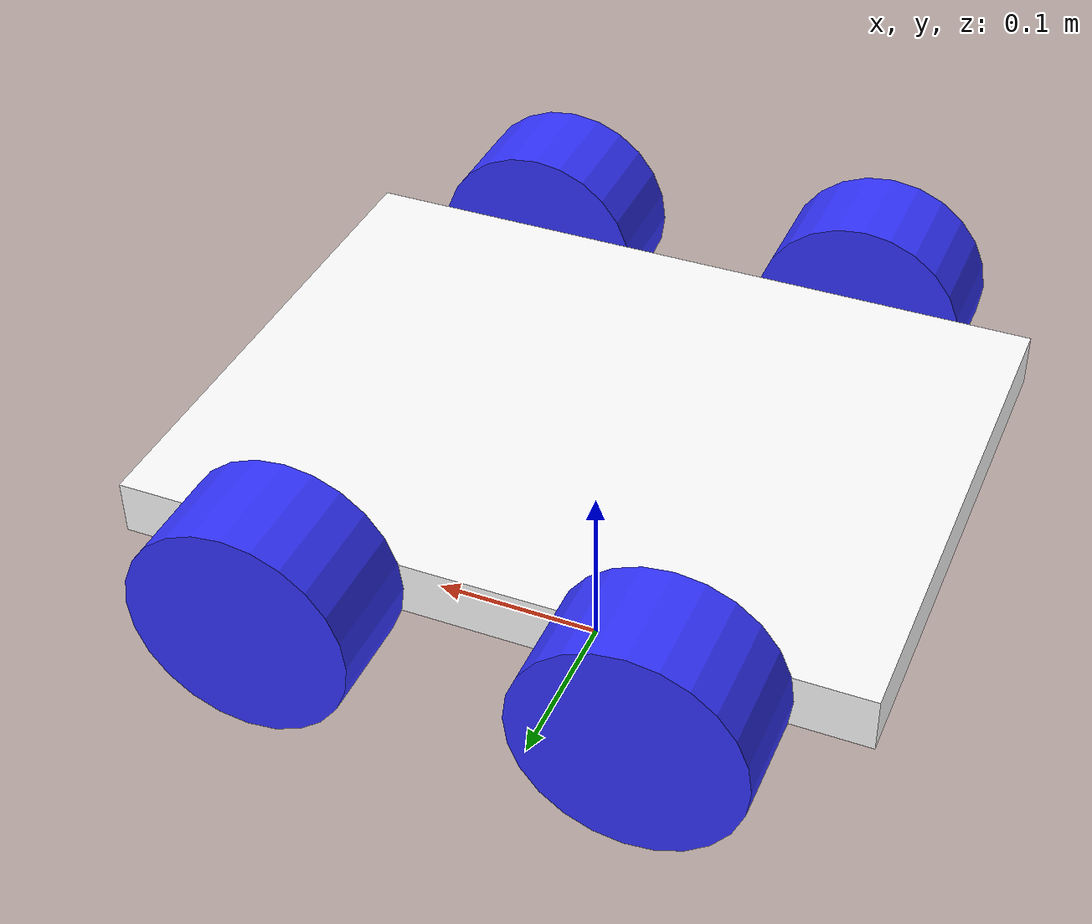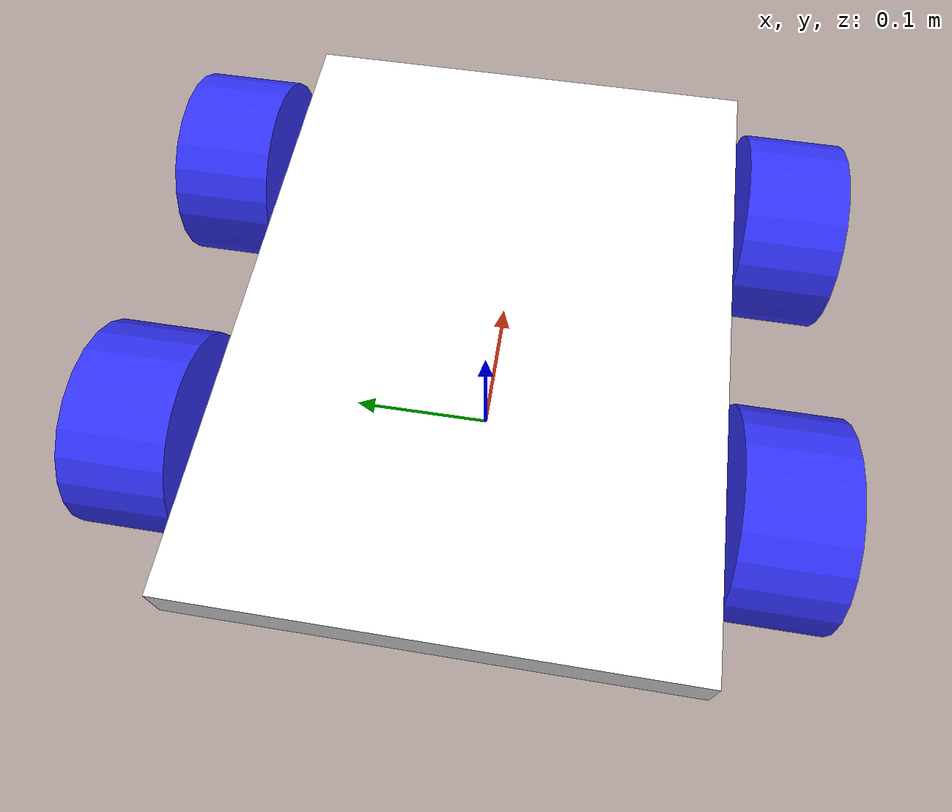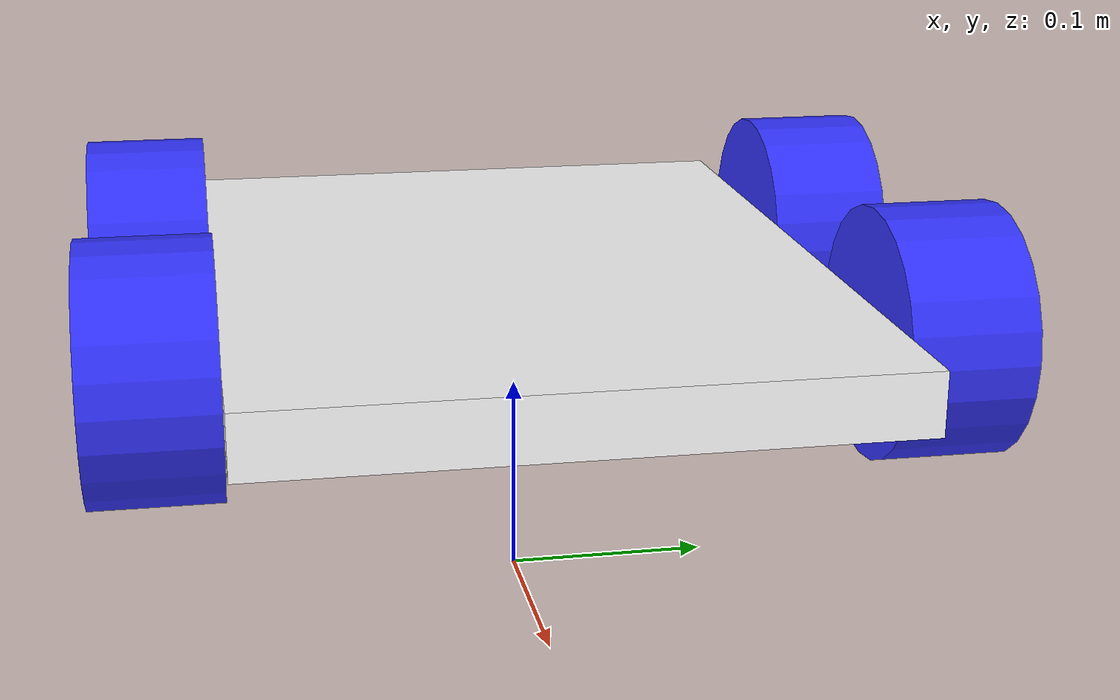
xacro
<?xml version="1.0"?>
<robot xmlns:xacro="http://www.ros.org/wiki/xacro" name="four_wheel_drive_robot">

  <!-- Include the parameters file -->
  <xacro:include filename="$(find track_master)/urdf/robot_parameters.xacro" />

  <!-- Couleurs -->
  <material name="white">
    <color rgba="1.0 1.0 1.0 1.0"/>
  </material>

  <material name="blue">
    <color rgba="0.2 0.2 1.0 1.0"/>
  </material>

  <!-- Root link (world or environment) -->
  <link name="base_footprint"/>

  <!-- Robot chassis -->
  <link name="base_link">
    <visual>
      <geometry>
        <box size="${chassis_length} ${chassis_width} ${chassis_height}"/>
      </geometry>
      <material name="white"/>
    </visual>
    <collision>
      <geometry>
        <box size="${chassis_length} ${chassis_width} ${chassis_height}"/>
      </geometry>
    </collision>
    <inertial>
      <mass value="2.0"/>
      <origin xyz="0 0 0"/>
      <inertia ixx="0.1" ixy="0.0" ixz="0.0" iyy="0.1" iyz="0.0" izz="0.1"/>
    </inertial>
  </link>

  <!-- Gazebo plugin for base link -->
  <gazebo reference="base_link">
    <material>Gazebo/White</material>
  </gazebo>

  <!-- Joint to connect base_link to world_link (fixed joint) -->
  <joint name="base_joint" type="fixed">
    <parent link="base_footprint"/>
    <child link="base_link"/>
    <origin xyz="0 0 0.15" rpy="0 0 0"/>
  </joint>

  <!-- Rear left wheel -->
  <link name="rear_left_wheel">
    <visual>
      <geometry>
        <cylinder radius="${rear_wheel_radius}" length="${rear_wheel_length}"/>
      </geometry>
      <material name="blue"/>
    </visual>
    <collision>
      <geometry>
        <cylinder radius="${rear_wheel_radius}" length="${rear_wheel_length}"/>
      </geometry>
    </collision>
    <inertial>
      <mass value="0.3"/>
      <origin xyz="0 0 0"/>
      <inertia ixx="0.01" ixy="0.0" ixz="0.0" iyy="0.01" iyz="0.0" izz="0.01"/>
    </inertial>
  </link>

  <gazebo reference="rear_left_wheel">
    <material>Gazebo/Blue</material>
  </gazebo>

  <!-- Rear right wheel -->
  <link name="rear_right_wheel">
    <visual>
      <geometry>
        <cylinder radius="${rear_wheel_radius}" length="${rear_wheel_length}"/>
      </geometry>
      <material name="blue"/>
    </visual>
    <collision>
      <geometry>
        <cylinder radius="${rear_wheel_radius}" length="${rear_wheel_length}"/>
      </geometry>
    </collision>
    <inertial>
      <mass value="0.3"/>
      <origin xyz="0 0 0"/>
      <inertia ixx="0.01" ixy="0.0" ixz="0.0" iyy="0.01" iyz="0.0" izz="0.01"/>
    </inertial>
  </link>

  <gazebo reference="rear_right_wheel">
    <material>Gazebo/Blue</material>
  </gazebo>

  <!-- Front left wheel -->
  <link name="front_left_wheel">
    <visual>
      <geometry>
        <cylinder radius="${front_wheel_radius}" length="${front_wheel_length}"/>
      </geometry>
      <material name="blue"/>
    </visual>
    <collision>
      <geometry>
        <cylinder radius="${front_wheel_radius}" length="${front_wheel_length}"/>
      </geometry>
    </collision>
    <inertial>
      <mass value="0.3"/>
      <origin xyz="0 0 0"/>
      <inertia ixx="0.01" ixy="0.0" ixz="0.0" iyy="0.01" iyz="0.0" izz="0.01"/>
    </inertial>
  </link>

  <gazebo reference="front_left_wheel">
    <material>Gazebo/Blue</material>
  </gazebo>

  <!-- Front right wheel -->
  <link name="front_right_wheel">
    <visual>
      <geometry>
        <cylinder radius="${front_wheel_radius}" length="${front_wheel_length}"/>
      </geometry>
      <material name="blue"/>
    </visual>
    <collision>
      <geometry>
        <cylinder radius="${front_wheel_radius}" length="${front_wheel_length}"/>
      </geometry>
    </collision>
    <inertial>
      <mass value="0.3"/>
      <origin xyz="0 0 0"/>
      <inertia ixx="0.01" ixy="0.0" ixz="0.0" iyy="0.01" iyz="0.0" izz="0.01"/>
    </inertial>
  </link>

  <gazebo reference="front_right_wheel">
    <material>Gazebo/Blue</material>
  </gazebo>

  <!-- Joints for each wheel -->
  <joint name="rear_left_wheel_joint" type="continuous">
    <parent link="base_link"/>
    <child link="rear_left_wheel"/>
    <origin xyz="${rear_left_wheel_pos_x} ${rear_left_wheel_pos_y} 0" rpy="-${pi/2}  0 0"/>
    <axis xyz="0 0 1"/>
  </joint>

  <joint name="rear_right_wheel_joint" type="continuous">
    <parent link="base_link"/>
    <child link="rear_right_wheel"/>
    <origin xyz="${rear_right_wheel_pos_x} ${rear_right_wheel_pos_y} 0" rpy="-${pi/2}   0 0"/>
    <axis xyz="0 0 1"/>
  </joint>

  <joint name="front_left_wheel_joint" type="continuous">
    <parent link="base_link"/>
    <child link="front_left_wheel"/>
    <origin xyz="${front_left_wheel_pos_x} ${front_left_wheel_pos_y} 0" rpy="-${pi/2}   0 0"/>
    <axis xyz="0 0 1"/>
  </joint>

  <joint name="front_right_wheel_joint" type="continuous">
    <parent link="base_link"/>
    <child link="front_right_wheel"/>
    <origin xyz="${front_right_wheel_pos_x} ${front_right_wheel_pos_y} 0" rpy="-${pi/2} 0 0"/>
    <axis xyz="0 0 1"/>
  </joint>

</robot>

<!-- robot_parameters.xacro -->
<robot xmlns:xacro="http://www.ros.org/wiki/xacro">

  <!-- Parameters for the robot dimensions -->
  <xacro:property name="chassis_length" value="0.4"/>
  <xacro:property name="chassis_width" value="0.3"/>
  <xacro:property name="chassis_height" value="0.03"/>

  <!-- Parameters for rear wheel positions -->
  <xacro:property name="rear_wheel_radius" value="0.06"/>
  <xacro:property name="rear_wheel_length" value="0.06"/>
  <xacro:property name="rear_left_wheel_pos_x" value="-0.10"/>
  <xacro:property name="rear_right_wheel_pos_x" value="-0.10"/>
  <xacro:property name="rear_left_wheel_pos_y" value="0.18"/>
  <xacro:property name="rear_right_wheel_pos_y" value="-0.18"/>

  <!-- Parameters for front wheel positions -->
  <xacro:property name="front_wheel_radius" value="0.06"/>
  <xacro:property name="front_wheel_length" value="0.06"/>
  <xacro:property name="front_left_wheel_pos_x" value="0.10"/>
  <xacro:property name="front_right_wheel_pos_x" value="0.10"/>
  <xacro:property name="front_left_wheel_pos_y" value="0.18"/>
  <xacro:property name="front_right_wheel_pos_y" value="-0.18"/>

  <!-- Parameters for steering limits -->
  <xacro:property name="steering_limit_lower" value="-0.785"/>
  <xacro:property name="steering_limit_upper" value="0.785"/>

  <!-- Parameters for sensor positions -->
  <xacro:property name="gps_pos_x" value="0.05"/>
  <xacro:property name="gps_pos_y" value="0.0"/>
  <xacro:property name="gps_pos_z" value="0.0"/>

  <xacro:property name="imu_pos_x" value="0.0"/>
  <xacro:property name="imu_pos_y" value="0.0"/>
  <xacro:property name="imu_pos_z" value="0.0"/>

</robot>
